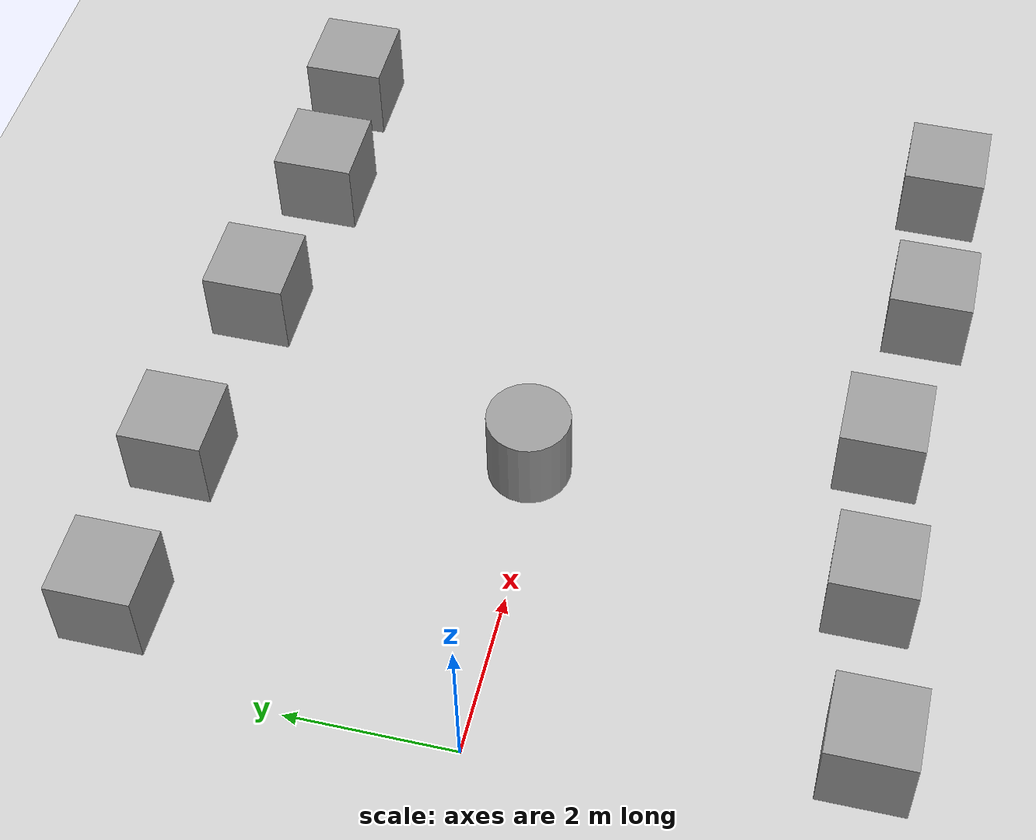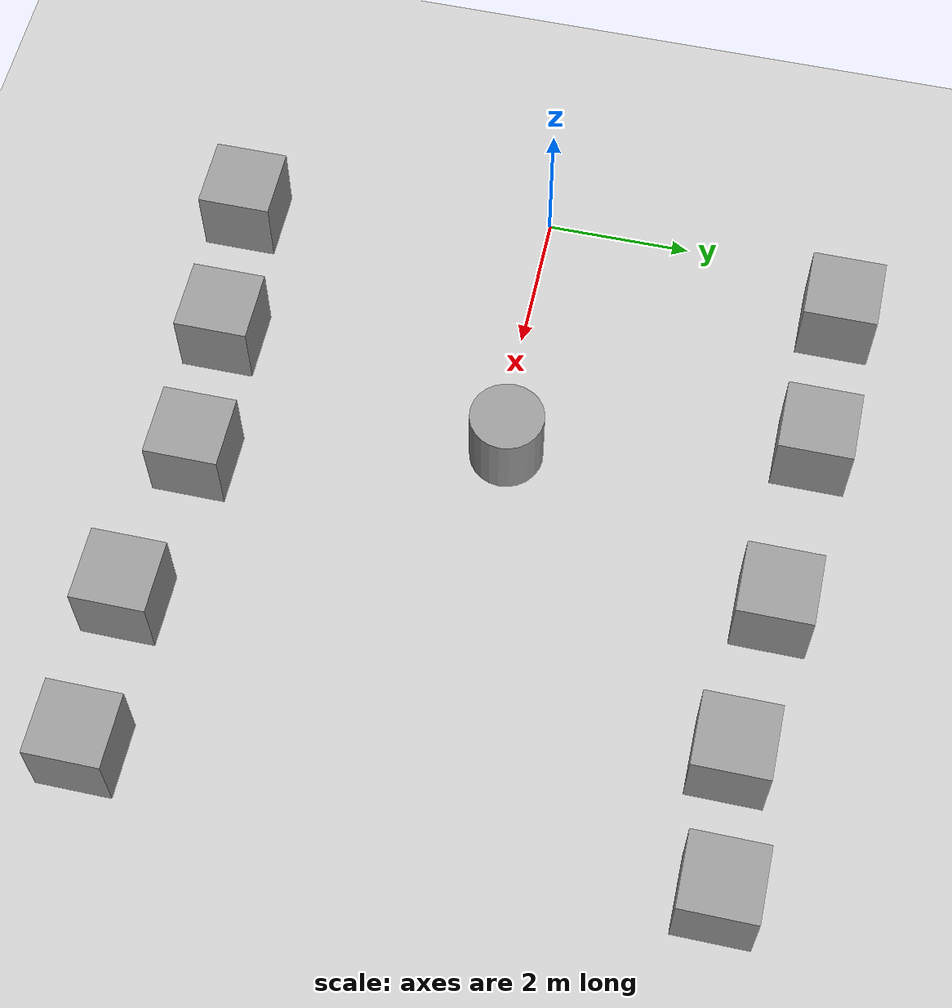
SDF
<sdf version="1.7">
 <world name="default">
  <light name="sun" type="directional">
   <pose>0 0 10 0 -0 0</pose>
   <diffuse>0.8 0.8 0.8 1</diffuse>
   <specular>0.2 0.2 0.2 1</specular>
   <attenuation>
    <range>1000</range>
    <constant>0.9</constant>
    <linear>0.01</linear>
    <quadratic>0.001</quadratic>
   </attenuation>
   <direction>-0.5 0.1 -0.9</direction>
   <spot><inner_angle>0</inner_angle><outer_angle>0</outer_angle><falloff>0</falloff></spot>
  </light>
  <model name="ground_plane">
   <static>1</static>
   <link name="link">
    <collision name="collision">
     <geometry><plane><normal>0 0 1</normal><size>100 100</size></plane></geometry>
     <surface>
      <contact><collide_bitmask>65535</collide_bitmask></contact>
      <friction><ode><mu>100</mu><mu2>50</mu2></ode></friction>
     </surface>
    </collision>
    <visual name="visual">
     <cast_shadows>0</cast_shadows>
     <geometry><plane><normal>0 0 1</normal><size>100 100</size></plane></geometry>
     <material>
      <script><uri>file://media/materials/scripts/gazebo.material</uri><name>Gazebo/Grey</name></script>
     </material>
    </visual>
   </link>
  </model>
  <gravity>0 0 -9.8</gravity>
  <magnetic_field>6e-06 2.3e-05 -4.2e-05</magnetic_field>
  <atmosphere type="adiabatic"/>
  <physics type="ode">
   <max_step_size>0.001</max_step_size>
   <real_time_factor>1</real_time_factor>
   <real_time_update_rate>1000</real_time_update_rate>
  </physics>
  <scene><ambient>0.4 0.4 0.4 1</ambient><background>0.7 0.7 0.7 1</background><shadows>1</shadows></scene>
  <spherical_coordinates>
   <surface_model>EARTH_WGS84</surface_model>
   <latitude_deg>0</latitude_deg>
   <longitude_deg>0</longitude_deg>
   <elevation>0</elevation>
   <heading_deg>0</heading_deg>
  </spherical_coordinates>
  <model name="unit_box">
   <pose>0.875865 4.2412 0.499995 -1e-05 -0 -0</pose>
   <link name="link">
    <inertial>
     <mass>1</mass>
     <inertia>
      <ixx>0.166667</ixx>
      <ixy>0</ixy>
      <ixz>0</ixz>
      <iyy>0.166667</iyy>
      <iyz>0</iyz>
      <izz>0.166667</izz>
     </inertia>
    </inertial>
    <collision name="collision"><geometry><box><size>1 1 1</size></box></geometry></collision>
    <visual name="visual">
     <geometry><box><size>1 1 1</size></box></geometry>
     <material>
      <script><name>Gazebo/Grey</name><uri>file://media/materials/scripts/gazebo.material</uri></script>
     </material>
    </visual>
   </link>
  </model>
  <model name="unit_box_0">
   <pose>3.02178 4.2062 0.499995 0 1e-05 0</pose>
   <link name="link">
    <inertial>
     <mass>1</mass>
     <inertia>
      <ixx>0.166667</ixx>
      <ixy>0</ixy>
      <ixz>0</ixz>
      <iyy>0.166667</iyy>
      <iyz>0</iyz>
      <izz>0.166667</izz>
     </inertia>
    </inertial>
    <collision name="collision"><geometry><box><size>1 1 1</size></box></geometry></collision>
    <visual name="visual">
     <geometry><box><size>1 1 1</size></box></geometry>
     <material>
      <script><name>Gazebo/Grey</name><uri>file://media/materials/scripts/gazebo.material</uri></script>
     </material>
    </visual>
   </link>
  </model>
  <model name="unit_box_1">
   <pose>5.49691 4.04096 0.499995 -1e-05 -0 -0</pose>
   <link name="link">
    <inertial>
     <mass>1</mass>
     <inertia>
      <ixx>0.166667</ixx>
      <ixy>0</ixy>
      <ixz>0</ixz>
      <iyy>0.166667</iyy>
      <iyz>0</iyz>
      <izz>0.166667</izz>
     </inertia>
    </inertial>
    <collision name="collision"><geometry><box><size>1 1 1</size></box></geometry></collision>
    <visual name="visual">
     <geometry><box><size>1 1 1</size></box></geometry>
     <material>
      <script><name>Gazebo/Grey</name><uri>file://media/materials/scripts/gazebo.material</uri></script>
     </material>
    </visual>
   </link>
  </model>
  <model name="unit_box_2">
   <pose>7.6459 3.82626 0.499995 0 1e-05 0</pose>
   <link name="link">
    <inertial>
     <mass>1</mass>
     <inertia>
      <ixx>0.166667</ixx>
      <ixy>0</ixy>
      <ixz>0</ixz>
      <iyy>0.166667</iyy>
      <iyz>0</iyz>
      <izz>0.166667</izz>
     </inertia>
    </inertial>
    <collision name="collision"><geometry><box><size>1 1 1</size></box></geometry></collision>
    <visual name="visual">
     <geometry><box><size>1 1 1</size></box></geometry>
     <material>
      <script><name>Gazebo/Grey</name><uri>file://media/materials/scripts/gazebo.material</uri></script>
     </material>
    </visual>
   </link>
  </model>
  <model name="unit_box_3">
   <pose>9.44371 3.95565 0.499995 -1e-05 -0 -0</pose>
   <link name="link">
    <inertial>
     <mass>1</mass>
     <inertia>
      <ixx>0.166667</ixx>
      <ixy>0</ixy>
      <ixz>0</ixz>
      <iyy>0.166667</iyy>
      <iyz>0</iyz>
      <izz>0.166667</izz>
     </inertia>
    </inertial>
    <collision name="collision"><geometry><box><size>1 1 1</size></box></geometry></collision>
    <visual name="visual">
     <geometry><box><size>1 1 1</size></box></geometry>
     <material>
      <script><name>Gazebo/Grey</name><uri>file://media/materials/scripts/gazebo.material</uri></script>
     </material>
    </visual>
   </link>
  </model>
  <model name="unit_box_4">
   <pose>0.815301 -4.26433 0.499995 0 1e-05 0</pose>
   <link name="link">
    <inertial>
     <mass>1</mass>
     <inertia>
      <ixx>0.166667</ixx>
      <ixy>0</ixy>
      <ixz>0</ixz>
      <iyy>0.166667</iyy>
      <iyz>0</iyz>
      <izz>0.166667</izz>
     </inertia>
    </inertial>
    <collision name="collision"><geometry><box><size>1 1 1</size></box></geometry></collision>
    <visual name="visual">
     <geometry><box><size>1 1 1</size></box></geometry>
     <material>
      <script><name>Gazebo/Grey</name><uri>file://media/materials/scripts/gazebo.material</uri></script>
     </material>
    </visual>
   </link>
  </model>
  <model name="unit_box_5">
   <pose>2.87553 -4.02064 0.499995 -1e-05 -0 -0</pose>
   <link name="link">
    <inertial>
     <mass>1</mass>
     <inertia>
      <ixx>0.166667</ixx>
      <ixy>0</ixy>
      <ixz>0</ixz>
      <iyy>0.166667</iyy>
      <iyz>0</iyz>
      <izz>0.166667</izz>
     </inertia>
    </inertial>
    <collision name="collision"><geometry><box><size>1 1 1</size></box></geometry></collision>
    <visual name="visual">
     <geometry><box><size>1 1 1</size></box></geometry>
     <material>
      <script><name>Gazebo/Grey</name><uri>file://media/materials/scripts/gazebo.material</uri></script>
     </material>
    </visual>
   </link>
  </model>
  <model name="unit_box_6">
   <pose>4.86634 -3.8615 0.499995 0 1e-05 0</pose>
   <link name="link">
    <inertial>
     <mass>1</mass>
     <inertia>
      <ixx>0.166667</ixx>
      <ixy>0</ixy>
      <ixz>0</ixz>
      <iyy>0.166667</iyy>
      <iyz>0</iyz>
      <izz>0.166667</izz>
     </inertia>
    </inertial>
    <collision name="collision"><geometry><box><size>1 1 1</size></box></geometry></collision>
    <visual name="visual">
     <geometry><box><size>1 1 1</size></box></geometry>
     <material>
      <script><name>Gazebo/Grey</name><uri>file://media/materials/scripts/gazebo.material</uri></script>
     </material>
    </visual>
   </link>
  </model>
  <model name="unit_box_7">
   <pose>7.09876 -4.15949 0.499995 -1e-05 -0 -0</pose>
   <link name="link">
    <inertial>
     <mass>1</mass>
     <inertia>
      <ixx>0.166667</ixx>
      <ixy>0</ixy>
      <ixz>0</ixz>
      <iyy>0.166667</iyy>
      <iyz>0</iyz>
      <izz>0.166667</izz>
     </inertia>
    </inertial>
    <collision name="collision"><geometry><box><size>1 1 1</size></box></geometry></collision>
    <visual name="visual">
     <geometry><box><size>1 1 1</size></box></geometry>
     <material>
      <script><name>Gazebo/Grey</name><uri>file://media/materials/scripts/gazebo.material</uri></script>
     </material>
    </visual>
   </link>
  </model>
  <model name="unit_box_8">
   <pose>9.21715 -4.08255 0.499995 0 1e-05 0</pose>
   <link name="link">
    <inertial>
     <mass>1</mass>
     <inertia>
      <ixx>0.166667</ixx>
      <ixy>0</ixy>
      <ixz>0</ixz>
      <iyy>0.166667</iyy>
      <iyz>0</iyz>
      <izz>0.166667</izz>
     </inertia>
    </inertial>
    <collision name="collision"><geometry><box><size>1 1 1</size></box></geometry></collision>
    <visual name="visual">
     <geometry><box><size>1 1 1</size></box></geometry>
     <material>
      <script><name>Gazebo/Grey</name><uri>file://media/materials/scripts/gazebo.material</uri></script>
     </material>
    </visual>
   </link>
  </model>
  <model name="unit_cylinder">
   <pose>3.84418 0.169316 0.499997 3e-06 4e-06 -0</pose>
   <link name="link">
    <inertial>
     <mass>1</mass>
     <inertia><ixx>0.145833</ixx><ixy>0</ixy><ixz>0</ixz><iyy>0.145833</iyy><iyz>0</iyz><izz>0.125</izz></inertia>
    </inertial>
    <collision name="collision">
     <geometry><cylinder><radius>0.5</radius><length>1</length></cylinder></geometry>
    </collision>
    <visual name="visual">
     <geometry><cylinder><radius>0.5</radius><length>1</length></cylinder></geometry>
     <material>
      <script><name>Gazebo/Grey</name><uri>file://media/materials/scripts/gazebo.material</uri></script>
     </material>
    </visual>
   </link>
  </model>
 </world>
</sdf>
